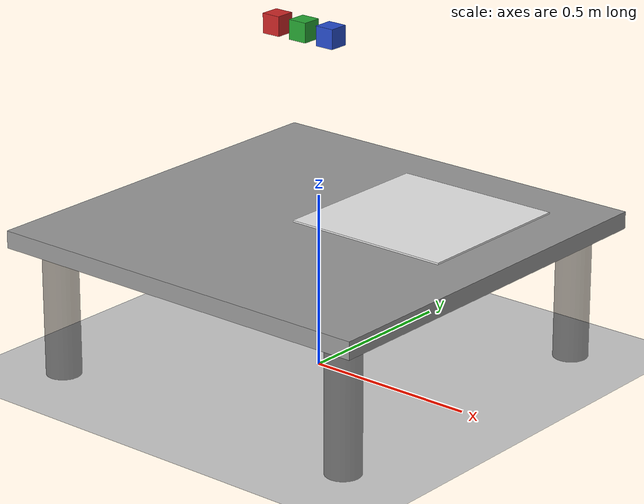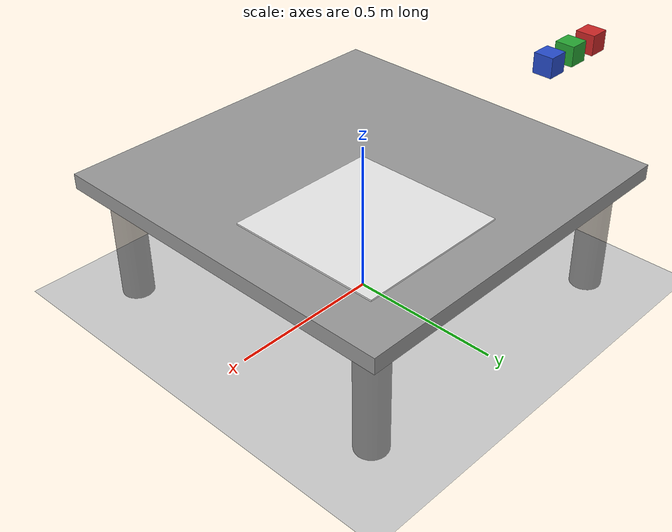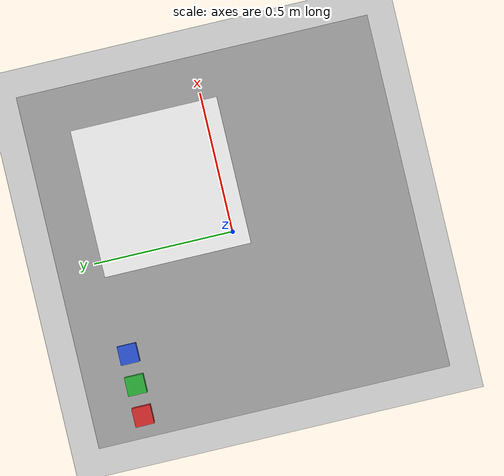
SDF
<?xml version="1.0" ?>
<sdf version="1.6">
  <world name="default">
    <!-- Include the ground plane -->
    <include>
      <uri>model://ground_plane</uri>
    </include>

    <!-- Include the sun for lighting -->
    <include>
      <uri>model://sun</uri>
    </include>

    <!-- Include the table -->
    <include>
      <uri>model://work_table</uri>
      <pose>0 0 0 0 0 0</pose> <!-- Position (x, y, z) -->
    </include>

    <!-- Include the red cube -->
    <include>
      <uri>model://cube_red</uri>
      <pose>-0.5 0.41 0.8 0 0 0</pose>
    </include>

    <!-- Include the blue cube -->
    <include>
      <uri>model://cube_blue</uri>
      <pose>-0.3 0.41 0.8 0 0 0</pose>
    </include>

    <!-- Include the green cube -->
    <include>
      <uri>model://cube_green</uri>
      <pose>-0.4 0.41 0.8 0 0 0</pose>
    </include>

  </world>
</sdf>

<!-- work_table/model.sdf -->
<sdf version="1.6">
  <model name="work_table">
    <static>true</static> <!-- Table and drop zone are static -->

    <!-- Table Link -->
    <link name="table">
      <!-- Tabletop -->
      <visual name="visual_tabletop">
        <geometry>
          <box>
            <size>1.2 1.2 0.05</size> <!-- Table dimensions -->
          </box>
        </geometry>
        <pose>0 0 0.4 0 0 0</pose> <!-- Table height -->
        <material>
          <script>
            <name>Gazebo/Grey</name>
          </script>
          <ambient>0.5 0.5 0.5 1</ambient>
          <diffuse>0.8 0.8 0.8 1</diffuse>
          <specular>0.2 0.2 0.2 1</specular>
        </material>
      </visual>
      <collision name="collision_tabletop">
        <geometry>
          <box>
            <size>1.2 1.2 0.05</size>
          </box>
        </geometry>
        <pose>0 0 0.4 0 0 0</pose>
      </collision>

      <!-- Table Legs -->
      <visual name="visual_leg_1">
        <geometry>
          <cylinder>
            <radius>0.05</radius> <!-- Leg radius -->
            <length>0.4</length> <!-- Leg height -->
          </cylinder>
        </geometry>
        <pose>-0.5 -0.5 0.2 0 0 0</pose> <!-- Back left corner -->
        <material>
          <script>
            <name>Gazebo/BlackTransparent</name>
          </script>
        </material>
      </visual>
      <visual name="visual_leg_2">
        <geometry>
          <cylinder>
            <radius>0.05</radius>
            <length>0.4</length>
          </cylinder>
        </geometry>
        <pose>0.5 -0.5 0.2 0 0 0</pose> <!-- Back right corner -->
        <material>
          <script>
            <name>Gazebo/BlackTransparent</name>
          </script>
        </material>
      </visual>
      <visual name="visual_leg_3">
        <geometry>
          <cylinder>
            <radius>0.05</radius>
            <length>0.4</length>
          </cylinder>
        </geometry>
        <pose>-0.5 0.5 0.2 0 0 0</pose> <!-- Front left corner -->
        <material>
          <script>
            <name>Gazebo/BlackTransparent</name>
          </script>
        </material>
      </visual>
      <visual name="visual_leg_4">
        <geometry>
          <cylinder>
            <radius>0.05</radius>
            <length>0.4</length>
          </cylinder>
        </geometry>
        <pose>0.5 0.5 0.2 0 0 0</pose> <!-- Front right corner -->
        <material>
          <script>
            <name>Gazebo/BlackTransparent</name>
          </script>
        </material>
      </visual>

      <!-- Drop Zone -->
      <visual name="visual_drop_zone">
        <geometry>
          <box>
            <size>0.5 0.5 0.01</size> <!-- Drop zone dimensions -->
          </box>
        </geometry>
        <pose>0.2 0.2 0.425 0 0 0</pose> <!-- Positioned at the right corner -->
        <material>
          <script>
            <name>Gazebo/White</name>
          </script>
          <ambient>1 1 1 1</ambient> <!-- White appearance -->
          <diffuse>1 1 1 1</diffuse>
          <specular>0.3 0.3 0.3 1</specular>
        </material>
      </visual>
    </link>
  </model>
</sdf>

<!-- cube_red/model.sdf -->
<sdf version='1.7'>
  <model name='cube_red'>
    <link name='link'>
      <inertial>

        <!--NOTE: Uses wood (Longleaf Pine) density (i.e 590 kg/m^3) to calculate the
        mass see https://en.wikipedia.org/wiki/Wood.
        -->
        <mass>0.12743999999999997</mass>
        <inertia>
          <ixx>7.6464e-05</ixx>
          <ixy>0</ixy>
          <ixz>0</ixz>
          <iyy>7.6464e-05</iyy>
          <iyz>0</iyz>
          <izz>7.6464e-05</izz>
        </inertia>
      </inertial>
      <visual name='visual'>
        <pose>0 0 0 0 0 0</pose>
        <geometry>
          <box>
            <size>0.06 0.06 0.06</size>
          </box>
        </geometry>
        <material>
          <script>
            <name>Gazebo/Red</name>
          </script>
          <shader type='pixel'/>
        </material>
      </visual>
      <collision name='collision'>
        <pose>0 0 0 0 0 0</pose>
        <geometry>
          <box>
            <size>0.06 0.06 0.06</size>
          </box>
        </geometry>
        <surface>
          <!--NOTE: Uses dynamic friction of brick on a wood surface
          see https://www.engineeringtoolbox.com/friction-coefficients-d_778.html
          -->
          <friction>
            <ode>
              <mu>0.6</mu>
              <mu2>0.6</mu2>
            </ode>
            <bullet>
              <friction>0.6</friction>
              <friction2>0.6</friction2>
            </bullet>
          </friction>
          <contact>
            <collide_bitmask>1</collide_bitmask>
            <ode>
              <min_depth>0.002</min_depth>
            </ode>
          </contact>
        </surface>
      </collision>
    </link>
  </model>
</sdf>

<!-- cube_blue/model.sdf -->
<sdf version='1.7'>
  <model name='cube_blue'>
    <link name='link'>
      <inertial>

        <!--NOTE: Uses wood (Longleaf Pine) density (i.e 590 kg/m^3) to calculate the
        mass see https://en.wikipedia.org/wiki/Wood.
        -->
        <mass>0.12743999999999997</mass>
        <inertia>
          <ixx>7.6464e-05</ixx>
          <ixy>0</ixy>
          <ixz>0</ixz>
          <iyy>7.6464e-05</iyy>
          <iyz>0</iyz>
          <izz>7.6464e-05</izz>
        </inertia>
      </inertial>
      <visual name='visual'>
        <pose>0 0 0 0 0 0</pose>
        <geometry>
          <box>
            <size>0.06 0.06 0.06</size>
          </box>
        </geometry>
        <material>
          <script>
            <name>Gazebo/Blue</name>
          </script>
          <shader type='pixel'/>
        </material>
      </visual>
      <collision name='collision'>
        <pose>0 0 0 0 0 0</pose>
        <geometry>
          <box>
            <size>0.06 0.06 0.06</size>
          </box>
        </geometry>
        <surface>
          <!--NOTE: Uses dynamic friction of brick on a wood surface
          see https://www.engineeringtoolbox.com/friction-coefficients-d_778.html
          -->
          <friction>
            <ode>
              <mu>0.6</mu>
              <mu2>0.6</mu2>
            </ode>
            <bullet>
              <friction>0.6</friction>
              <friction2>0.6</friction2>
            </bullet>
          </friction>
          <contact>
            <collide_bitmask>1</collide_bitmask>
            <ode>
              <min_depth>0.002</min_depth>
            </ode>
          </contact>
        </surface>
      </collision>
    </link>
  </model>
</sdf>

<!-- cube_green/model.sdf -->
<sdf version='1.7'>
  <model name='cube_green'>
    <link name='link'>
      <inertial>

        <!--NOTE: Uses wood (Longleaf Pine) density (i.e 590 kg/m^3) to calculate the
        mass see https://en.wikipedia.org/wiki/Wood.
        -->
        <mass>0.12743999999999997</mass>
        <inertia>
          <ixx>7.6464e-05</ixx>
          <ixy>0</ixy>
          <ixz>0</ixz>
          <iyy>7.6464e-05</iyy>
          <iyz>0</iyz>
          <izz>7.6464e-05</izz>
        </inertia>
      </inertial>
      <visual name='visual'>
        <pose>0 0 0 0 0 0</pose>
        <geometry>
          <box>
            <size>0.06 0.06 0.06</size>
          </box>
        </geometry>
        <material>
          <script>
            <name>Gazebo/Green</name>
          </script>
          <shader type='pixel'/>
        </material>
      </visual>
      <collision name='collision'>
        <pose>0 0 0 0 0 0</pose>
        <geometry>
          <box>
            <size>0.06 0.06 0.06</size>
          </box>
        </geometry>
        <surface>
          <!--NOTE: Uses dynamic friction of brick on a wood surface
          see https://www.engineeringtoolbox.com/friction-coefficients-d_778.html
          -->
          <friction>
            <ode>
              <mu>0.6</mu>
              <mu2>0.6</mu2>
            </ode>
            <bullet>
              <friction>0.6</friction>
              <friction2>0.6</friction2>
            </bullet>
          </friction>
          <contact>
            <collide_bitmask>1</collide_bitmask>
            <ode>
              <min_depth>0.002</min_depth>
            </ode>
          </contact>
        </surface>
      </collision>
    </link>
  </model>
</sdf>
